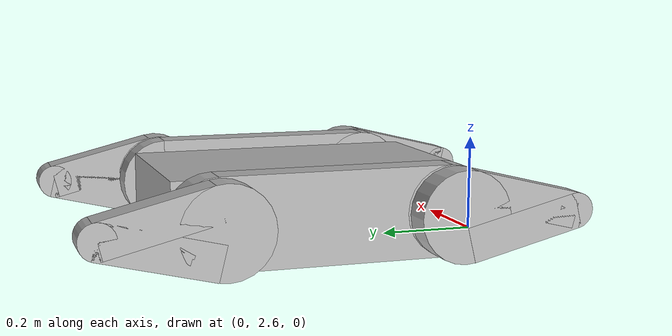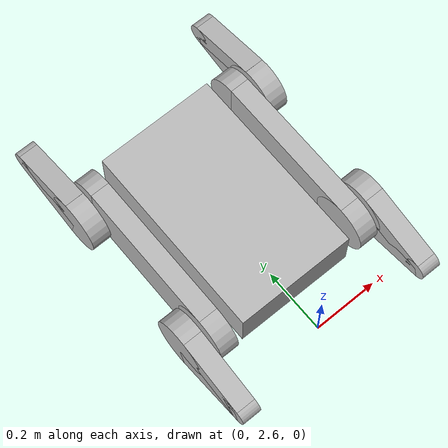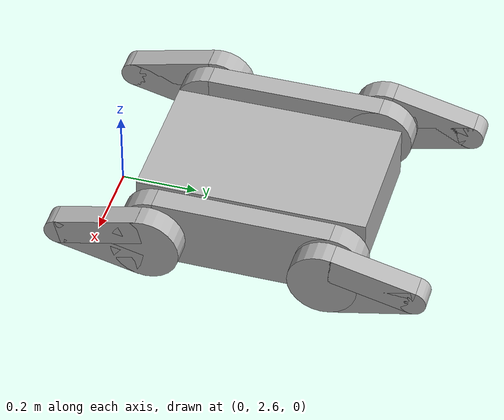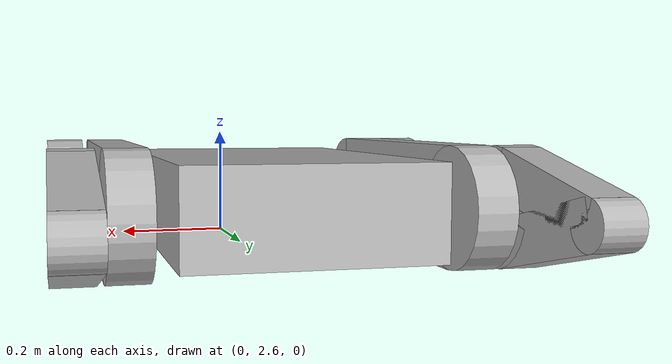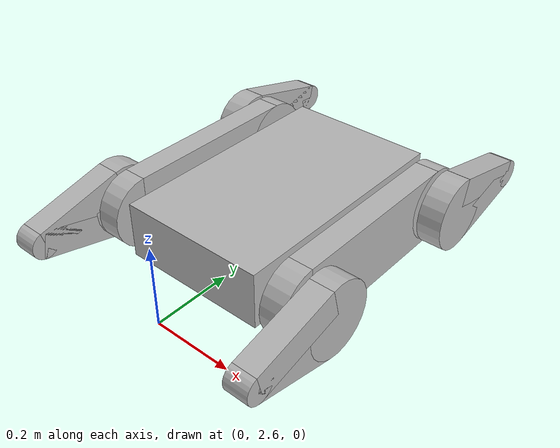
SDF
<?xml version='1.0'?>
<sdf version="1.5">
        <model name="jaguar">

            <pose frame=''>0 3 0.1 0 0 -1.5708</pose>

            <link name='base_link'>
                <pose frame=''>0 0 0 0 -0 0</pose>
                <inertial>
                    <pose frame=''>0 0 0 1.5708 -0 0</pose>
                    <mass>13.14</mass>
                    <inertia>
                        <ixx>0.17136</ixx>
                        <ixy>0</ixy>
                        <ixz>0</ixz>
                        <iyy>0.544105</iyy>
                        <iyz>0</iyz>
                        <izz>0.415662</izz>
                    </inertia>
                </inertial>
                <collision name='base_link_collision'>
                    <pose frame=''>0 0 0 0 -0 0</pose>
                    <geometry>
                        <box>
                            <size>0.6 0.37 0.140</size>
                        </box>
                    </geometry>
                </collision>
                <visual name='base_link_visual'>
                    <pose frame=''>0 0 0 0 -0 0</pose>
                    <geometry>
                        <box>
                            <size>0.6 0.37 0.140</size>
                        </box>
                    </geometry>
                </visual>
                <self_collide>0</self_collide>
                <gravity>1</gravity>
                <kinematic>0</kinematic>
            </link>

            <link name='left_track'>
                <pose frame=''>0 0.245 0 0 0 0</pose>
                <inertial>
                    <pose frame=''>0 0 0 0 0 0</pose>
                    <mass>6.06</mass>
                    <inertia>
                        <ixx>0.001818</ixx>
                        <ixy>0</ixy>
                        <ixz>0</ixz>
                        <iyy>0.032554</iyy>
                        <iyz>0</iyz>
                        <izz>0.031391</izz>
                    </inertia>
                </inertial>
                <collision name='left_track_collision'>
                    <pose frame=''>0 0 0 1.5708 0 1.5708</pose>
                    <geometry>
                        <box>
                            <size>0.06 0.180 0.46</size>
                        </box>
                    </geometry>
                    <surface>
                        <friction>
                            <ode>
                                <mu>0.7</mu>
                                <mu2>150</mu2>
                                <fdir1>0 1 0</fdir1>
                            </ode>
                        </friction>
                    </surface>
                </collision>
                <collision name='left_track_collision_1'>
                    <pose frame=''>0.23 0 0 1.5708 0 0</pose>
                    <geometry>
                        <cylinder>
                            <length>0.06</length>
                            <radius>0.09</radius>
                        </cylinder>
                    </geometry>
                    <surface>
                        <friction>
                            <ode>
                                <mu>0.7</mu>
                                <mu2>150</mu2>
                                <fdir1>0 1 0</fdir1>
                            </ode>
                        </friction>
                    </surface>
                </collision>
                <collision name='left_track_collision_2'>
                    <pose frame=''>-0.23 0 0 1.5708 0 0</pose>
                    <geometry>
                        <cylinder>
                            <length>0.06</length>
                            <radius>0.09</radius>
                        </cylinder>
                    </geometry>
                    <surface>
                        <friction>
                            <ode>
                                <mu>0.7</mu>
                                <mu2>150</mu2>
                                <fdir1>0 1 0</fdir1>
                            </ode>
                        </friction>
                    </surface>
                </collision>
                <visual name='left_track_visual'>
                    <pose frame=''>0 0 0 1.5708 0 1.5708</pose>
                    <geometry>
                        <box>
                            <size>0.06 0.180 0.46</size>
                        </box>
                    </geometry>
                </visual>
                <visual name='left_track_visual_1'>
                    <pose frame=''>0.23 0 0 1.5708 0 0</pose>
                    <geometry>
                        <cylinder>
                            <length>0.06</length>
                            <radius>0.09</radius>
                        </cylinder>
                    </geometry>
                </visual>
                <visual name='left_track_visual_2'>
                    <pose frame=''>-0.23 0 0 1.5708 0 0</pose>
                    <geometry>
                        <cylinder>
                            <length>0.06</length>
                            <radius>0.09</radius>
                        </cylinder>
                    </geometry>
                </visual>
                <gravity>1</gravity>
                <kinematic>0</kinematic>
            </link>
            <joint name='left_track_j' type='fixed'>
                <child>left_track</child>
                <parent>base_link</parent>
            </joint>

            <link name='right_track'>
                <pose frame=''>0 -0.245 0 0 0 0</pose>
                <inertial>
                    <pose frame=''>0 0 0 0 -0 0</pose>
                    <mass>6.06</mass>
                    <inertia>
                        <ixx>0.001818</ixx>
                        <ixy>0</ixy>
                        <ixz>0</ixz>
                        <iyy>0.032554</iyy>
                        <iyz>0</iyz>
                        <izz>0.031391</izz>
                    </inertia>
                </inertial>
                <collision name='right_track_collision'>
                    <pose frame=''>0 0 0 1.5708 0 1.5708</pose>
                    <geometry>
                        <box>
                            <size>0.06 0.180 0.46</size>
                        </box>
                    </geometry>
                    <surface>
                        <friction>
                            <ode>
                                <mu>0.7</mu>
                                <mu2>150</mu2>
                                <fdir1>0 1 0</fdir1>
                            </ode>
                        </friction>
                    </surface>
                </collision>
                <collision name='right_track_collision_1'>
                    <pose frame=''>0.23 0 0 1.5708 0 0</pose>
                    <geometry>
                        <cylinder>
                            <length>0.06</length>
                            <radius>0.09</radius>
                        </cylinder>
                    </geometry>
                    <surface>
                        <friction>
                            <ode>
                                <mu>0.7</mu>
                                <mu2>150</mu2>
                                <fdir1>0 1 0</fdir1>
                            </ode>
                        </friction>
                    </surface>
                </collision>
                <collision name='right_track_collision_2'>
                    <pose frame=''>-0.23 0 0 1.5708 0 0</pose>
                    <geometry>
                        <cylinder>
                            <length>0.06</length>
                            <radius>0.09</radius>
                        </cylinder>
                    </geometry>
                    <surface>
                        <friction>
                            <ode>
                                <mu>0.7</mu>
                                <mu2>150</mu2>
                                <fdir1>0 1 0</fdir1>
                            </ode>
                        </friction>
                    </surface>
                </collision>
                <visual name='right_track_visual'>
                    <pose frame=''>0 0 0 1.5708 0 1.5708</pose>
                    <geometry>
                        <box>
                            <size>0.06 0.180 0.46</size>
                        </box>
                    </geometry>
                </visual>
                <visual name='right_track_visual_1'>
                    <pose frame=''>0.23 0 0 1.5708 0 0</pose>
                    <geometry>
                        <cylinder>
                            <length>0.06</length>
                            <radius>0.09</radius>
                        </cylinder>
                    </geometry>
                </visual>
                <visual name='right_track_visual_2'>
                    <pose frame=''>-0.23 0 0 1.5708 0 0</pose>
                    <geometry>
                        <cylinder>
                            <length>0.06</length>
                            <radius>0.09</radius>
                        </cylinder>
                    </geometry>
                </visual>
                <gravity>1</gravity>
                <kinematic>0</kinematic>
            </link>
            <joint name='right_track_j' type='fixed'>
                <child>right_track</child>
                <parent>base_link</parent>
            </joint>
            <!--__________________right_rear_arm__________________-->

		    <link name="right_rear_arm">
		      <pose>-0.345 -0.315 0.00 0 0 1.5708</pose>
		      <inertial>
		        <pose>-0.015 0 0 1.57 0 1.57</pose>
		        <mass>1.0</mass>
		        <inertia>
		          <ixx>6.8125e-4</ixx>
		          <ixy>0</ixy>
		          <ixz>0</ixz>
		          <iyy>3.96253e-3</iyy>
		          <iyz>0</iyz>
		          <izz>4.53125e-3</izz>
		        </inertia>
		      </inertial>
		      <visual name="visual">
		        <geometry>
		          <box>
		            <size>.002 .23 .05</size>
		          </box>
		        </geometry>
		        <material>
		          <ambient>0.7 0.7 0.7 1</ambient>
		          <diffuse>0.3 0.3 0.3 1</diffuse>
		          <specular>0.1 0.1 0.1 1</specular>
		          <emissive>0 0 0 0</emissive>
		        </material>
		      </visual>

    		      <collision name="collision_right_rear_arm_wheel_1">
                    <pose>-0 -0.115 0 0 -1.5708 0</pose>
    		        <geometry>
    		          <cylinder>
    		            <radius>.09</radius>
    		            <length>.06</length>
    		          </cylinder>
    		        </geometry>
    		        <surface>
    		          <friction>
    		            <ode>
    		              <mu>0.7</mu>
                          <mu2>150</mu2>
                          <fdir1>0 1 0</fdir1>
    		            </ode>
    		          </friction>
    		        </surface>
    		      </collision>

    		      <visual name="visual_right_rear_arm_wheel_1">
                    <pose>-0 -0.115 0 0 -1.5708 0</pose>
    		        <geometry>
    		          <cylinder>
    		            <radius>.09</radius>
    		            <length>.06</length>
    		          </cylinder>
    		        </geometry>
    		      </visual>
    		      <self_collide>0</self_collide>

    		     <collision name="collision_right_rear_arm_wheel_2">
                    <pose>-0 0.115 0 0 -1.5708 0</pose>
    		        <geometry>
    		          <cylinder>
    		            <radius>.035</radius>
    		            <length>.06</length>
    		          </cylinder>
    		        </geometry>
    		        <surface>
    		          <friction>
    		            <ode>
    		              <mu>0.7</mu>
                          <mu2>150</mu2>
                          <fdir1>0 1 0</fdir1>
    		            </ode>
    		          </friction>
    		        </surface>
    		      </collision>

    		      <visual name="visual_right_rear_arm_wheel_2">
                    <pose>-0 0.115 0 0 -1.5708 0</pose>
    		        <geometry>
    		          <cylinder>
    		            <radius>.035</radius>
    		            <length>.06</length>
    		          </cylinder>
    		        </geometry>
    		      </visual>
    		      <self_collide>0</self_collide>

                     <collision name='right_rear_track_collision'>
                        <pose>-0 0.00657 -0.0267021 -1.3293 0 0</pose>
                        <geometry>
                            <box>
                                <size>0.06 0.07 0.2233</size>
                            </box>
                        </geometry>
                        <surface>
                            <friction>
                                <ode>
                                    <mu>0.7</mu>
                                    <mu2>150</mu2>
                                    <fdir1>0 1 0</fdir1>
                                </ode>
                            </friction>
                        </surface>
                    </collision>

                    <visual name='right_rear_track_visual'>
                        <pose>-0 0.00657 0.0267021 1.3293 0 0</pose>
                        <geometry>
                            <box>
                                <size>0.06 0.07 0.2233</size>
                            </box>
                        </geometry>
                    </visual>

                    <collision name='right_rear_track_collision_2'>
                        <pose>-0 0.00657 0.0267021 1.3293 0 0</pose>
                        <geometry>
                            <box>
                                <size>0.06 0.07 0.23</size>
                            </box>
                        </geometry>
                        <surface>
                            <friction>
                                <ode>
                                    <mu>0.7</mu>
                                    <mu2>150</mu2>
                                    <fdir1>0 1 0</fdir1>
                                </ode>
                            </friction>
                        </surface>
                    </collision>

                    <visual name='right_rear_track_visual_2'>
                        <pose>-0 0.00657 -0.0267021 -1.3293 0 0</pose>
                        <geometry>
                            <box>
                                <size>0.06 0.07 0.23</size>
                            </box>
                        </geometry>
                    </visual>
                    <gravity>1</gravity>
                    <kinematic>0</kinematic>-->
            </link>
            <joint name='right_rear_track_j' type='fixed'>
                <pose>0 -0.115 -0.001 0 0 0</pose>
                <child>right_rear_arm</child>
                <parent>base_link</parent>
                <axis>
                    <xyz>1 0 0</xyz>
                    <dynamics>
                        <damping>.5</damping>
                    </dynamics>
                    <limit>
                        <velocity>1</velocity>
                    </limit>
                </axis>
            </joint>

		<!--__________________/right_rear_arm__________________-->

		<!--__________________left_rear_arm__________________-->
		   <link name="left_rear_arm">
              <pose>-0.345 0.315 0.00 0 0 1.5708</pose>
              <inertial>
                <pose>-0.015 0 0 1.57 0 1.57</pose>
                <mass>1.0</mass>
                <inertia>
                  <ixx>6.8125e-4</ixx>
                  <ixy>0</ixy>
                  <ixz>0</ixz>
                  <iyy>3.96253e-3</iyy>
                  <iyz>0</iyz>
                  <izz>4.53125e-3</izz>
                </inertia>
              </inertial>
              <visual name="visual">
                <geometry>
                  <box>
                    <size>.002 .23 .05</size>
                  </box>
                </geometry>
                <material>
                  <ambient>0.7 0.7 0.7 1</ambient>
                  <diffuse>0.3 0.3 0.3 1</diffuse>
                  <specular>0.1 0.1 0.1 1</specular>
                  <emissive>0 0 0 0</emissive>
                </material>
              </visual>

                  <collision name="collision_left_rear_arm_wheel_1">
                    <pose>-0 -0.115 0 0 -1.5708 0</pose>
                    <geometry>
                      <cylinder>
                        <radius>.09</radius>
                        <length>.06</length>
                      </cylinder>
                    </geometry>
                    <surface>
                      <friction>
                        <ode>
                          <mu>0.7</mu>
                          <mu2>150</mu2>
                          <fdir1>0 1 0</fdir1>
                        </ode>
                      </friction>
                    </surface>
                  </collision>

                  <visual name="visual_left_rear_arm_wheel_1">
                    <pose>-0 -0.115 0 0 -1.5708 0</pose>
                    <geometry>
                      <cylinder>
                        <radius>.09</radius>
                        <length>.06</length>
                      </cylinder>
                    </geometry>
                  </visual>
                  <self_collide>0</self_collide>

                 <collision name="collision_left_rear_arm_wheel_2">
                    <pose>-0 0.115 0 0 -1.5708 0</pose>
                    <geometry>
                      <cylinder>
                        <radius>.035</radius>
                        <length>.06</length>
                      </cylinder>
                    </geometry>
                    <surface>
                      <friction>
                        <ode>
                          <mu>0.7</mu>
                          <mu2>150</mu2>
                          <fdir1>0 1 0</fdir1>
                        </ode>
                      </friction>
                    </surface>
                  </collision>

                  <visual name="visual_left_rear_arm_wheel_2">
                    <pose>-0 0.115 0 0 -1.5708 0</pose>
                    <geometry>
                      <cylinder>
                        <radius>.035</radius>
                        <length>.06</length>
                      </cylinder>
                    </geometry>
                  </visual>
                  <self_collide>0</self_collide>

                     <collision name='left_rear_track_collision'>
                        <pose>-0 0.00657 0.0267021 1.3293 0 0</pose>
                        <geometry>
                            <box>
                                <size>0.06 0.07 0.2233</size>
                            </box>
                        </geometry>
                        <surface>
                            <friction>
                                <ode>
                                    <mu>0.7</mu>
                                    <mu2>150</mu2>
                                    <fdir1>0 1 0</fdir1>
                                </ode>
                            </friction>
                        </surface>
                    </collision>

                    <visual name='left_rear_track_visual'>
                        <pose>-0 0.00657 0.0267021 1.3293 0 0</pose>
                        <geometry>
                            <box>
                                <size>0.06 0.07 0.2233</size>
                            </box>
                        </geometry>
                    </visual>

                    <collision name='left_rear_track_collision_2'>
                        <pose>-0 0.00657 -0.0267021 -1.3293 0 0</pose>
                        <geometry>
                            <box>
                                <size>0.06 0.07 0.23</size>
                            </box>
                        </geometry>
                        <surface>
                            <friction>
                                <ode>
                                    <mu>0.7</mu>
                                    <mu2>150</mu2>
                                    <fdir1>0 1 0</fdir1>
                                </ode>
                            </friction>
                        </surface>
                    </collision>

                    <visual name='left_rear_track_visual_2'>
                        <pose>-0 0.00657 -0.0267021 -1.3293 0 0</pose>
                        <geometry>
                            <box>
                                <size>0.06 0.07 0.23</size>
                            </box>
                        </geometry>
                    </visual>
                    <gravity>1</gravity>
                    <kinematic>0</kinematic>-->
            </link>
            <joint name='left_rear_track_j' type='fixed'>
                <pose>0 -0.115 0.001 0 0 0</pose>
                <child>left_rear_arm</child>
                <parent>base_link</parent>
                <axis>
                    <xyz>1 0 0</xyz>
                    <dynamics>
                        <damping>.5</damping>
                    </dynamics>
                    <limit>
                        <velocity>1</velocity>
                    </limit>
                </axis>
            </joint>

		<!--__________________/left_rear_arm__________________-->

		<!--__________________right_front_arm__________________-->
	    	<link name="right_front_arm">
              <pose>0.345 -0.315 0.00 0 0 1.5708</pose>
              <inertial>
                <pose>-0.015 0 0 1.57 0 1.57</pose>
                <mass>1.0</mass>
                <inertia>
                  <ixx>6.8125e-4</ixx>
                  <ixy>0</ixy>
                  <ixz>0</ixz>
                  <iyy>3.96253e-3</iyy>
                  <iyz>0</iyz>
                  <izz>4.53125e-3</izz>
                </inertia>
              </inertial>
              <visual name="visual">
                <geometry>
                  <box>
                    <size>.002 .23 .05</size>
                  </box>
                </geometry>
                <material>
                  <ambient>0.7 0.7 0.7 1</ambient>
                  <diffuse>0.3 0.3 0.3 1</diffuse>
                  <specular>0.1 0.1 0.1 1</specular>
                  <emissive>0 0 0 0</emissive>
                </material>
              </visual>

                  <collision name="collision_right_front_arm_wheel_1">
                    <pose>-0 0.115 0 0 -1.5708 0</pose>
                    <geometry>
                      <cylinder>
                        <radius>.09</radius>
                        <length>.06</length>
                      </cylinder>
                    </geometry>
                    <surface>
                      <friction>
                        <ode>
                          <mu>0.7</mu>
                          <mu2>150</mu2>
                          <fdir1>0 1 0</fdir1>
                        </ode>
                      </friction>
                    </surface>
                  </collision>

                  <visual name="visual_right_front_arm_wheel_1">
                    <pose>-0 0.115 0 0 -1.5708 0</pose>
                    <geometry>
                      <cylinder>
                        <radius>.09</radius>
                        <length>.06</length>
                      </cylinder>
                    </geometry>
                  </visual>
                  <self_collide>0</self_collide>

                 <collision name="collision_right_front_arm_wheel_2">
                    <pose>-0 -0.115 0 0 -1.5708 0</pose>
                    <geometry>
                      <cylinder>
                        <radius>.035</radius>
                        <length>.06</length>
                      </cylinder>
                    </geometry>
                    <surface>
                      <friction>
                        <ode>
                          <mu>0.7</mu>
                          <mu2>150</mu2>
                          <fdir1>0 1 0</fdir1>
                        </ode>
                      </friction>
                    </surface>
                  </collision>

                  <visual name="visual_right_front_arm_wheel_2">
                    <pose>-0 -0.115 0 0 -1.5708 0</pose>
                    <geometry>
                      <cylinder>
                        <radius>.035</radius>
                        <length>.06</length>
                      </cylinder>
                    </geometry>
                  </visual>
                  <self_collide>0</self_collide>

                     <collision name='right_front_track_collision'>
                        <pose>-0 -0.00657 0.0267021 -1.3293 0 0</pose>
                        <geometry>
                            <box>
                                <size>0.06 0.07 0.2233</size>
                            </box>
                        </geometry>
                        <surface>
                            <friction>
                                <ode>
                                    <mu>0.7</mu>
                                    <mu2>150</mu2>
                                    <fdir1>0 1 0</fdir1>
                                </ode>
                            </friction>
                        </surface>
                    </collision>

                    <visual name='right_front_track_visual'>
                        <pose>-0 -0.00657 0.0267021 -1.3293 0 0</pose>
                        <geometry>
                            <box>
                                <size>0.06 0.07 0.2233</size>
                            </box>
                        </geometry>
                    </visual>

                    <collision name='right_front_track_collision_2'>
                        <pose>-0 -0.00657 -0.0267021 1.3293 0 0</pose>
                        <geometry>
                            <box>
                                <size>0.06 0.07 0.23</size>
                            </box>
                        </geometry>
                        <surface>
                            <friction>
                                <ode>
                                    <mu>0.7</mu>
                                    <mu2>150</mu2>
                                    <fdir1>0 1 0</fdir1>
                                </ode>
                            </friction>
                        </surface>
                    </collision>

                    <visual name='right_front_track_visual_2'>
                        <pose>-0 -0.00657 -0.0267021 1.3293 0 0</pose>
                        <geometry>
                            <box>
                                <size>0.06 0.07 0.23</size>
                            </box>
                        </geometry>
                    </visual>
                    <gravity>1</gravity>
                    <kinematic>0</kinematic>-->
            </link>
            <joint name='right_front_track_j' type='fixed'>
                <pose>0 0.115 -0.001 0 0 0</pose>
                <child>right_front_arm</child>
                <parent>base_link</parent>
                <axis>
                    <xyz>1 0 0</xyz>
                    <dynamics>
                        <damping>.5</damping>
                    </dynamics>
                    <limit>
                        <velocity>1</velocity>
                    </limit>
                </axis>
            </joint>
		<!--__________________/right_front_arm__________________-->
		<!--__________________left_front_arm__________________-->
		    <link name="left_front_arm">
              <pose>0.345 0.315 0.00 0 0 1.5708</pose>
              <inertial>
                <pose>-0.015 0 0 1.57 0 1.57</pose>
                <mass>1.0</mass>
                <inertia>
                  <ixx>6.8125e-4</ixx>
                  <ixy>0</ixy>
                  <ixz>0</ixz>
                  <iyy>3.96253e-3</iyy>
                  <iyz>0</iyz>
                  <izz>4.53125e-3</izz>
                </inertia>
              </inertial>
              <visual name="visual">
                <geometry>
                  <box>
                    <size>.002 .23 .05</size>
                  </box>
                </geometry>
                <material>
                  <ambient>0.7 0.7 0.7 1</ambient>
                  <diffuse>0.3 0.3 0.3 1</diffuse>
                  <specular>0.1 0.1 0.1 1</specular>
                  <emissive>0 0 0 0</emissive>
                </material>
              </visual>

                  <collision name="collision_left_front_arm_wheel_1">
                    <pose>-0 0.115 0 0 -1.5708 0</pose>
                    <geometry>
                      <cylinder>
                        <radius>.09</radius>
                        <length>.06</length>
                      </cylinder>
                    </geometry>
                    <surface>
                      <friction>
                        <ode>
                          <mu>0.7</mu>
                          <mu2>150</mu2>
                          <fdir1>0 1 0</fdir1>
                        </ode>
                      </friction>
                    </surface>
                  </collision>

                  <visual name="visual_left_front_arm_wheel_1">
                    <pose>-0 0.115 0 0 -1.5708 0</pose>
                    <geometry>
                      <cylinder>
                        <radius>.09</radius>
                        <length>.06</length>
                      </cylinder>
                    </geometry>
                  </visual>
                  <self_collide>0</self_collide>

                 <collision name="collision_left_front_arm_wheel_2">
                    <pose>-0 -0.115 0 0 -1.5708 0</pose>
                    <geometry>
                      <cylinder>
                        <radius>.035</radius>
                        <length>.06</length>
                      </cylinder>
                    </geometry>
                    <surface>
                      <friction>
                        <ode>
                          <mu>0.7</mu>
                          <mu2>150</mu2>
                          <fdir1>0 1 0</fdir1>
                        </ode>
                      </friction>
                    </surface>
                  </collision>

                  <visual name="visual_left_front_arm_wheel_2">
                    <pose>-0 -0.115 0 0 -1.5708 0</pose>
                    <geometry>
                      <cylinder>
                        <radius>.035</radius>
                        <length>.06</length>
                      </cylinder>
                    </geometry>
                  </visual>
                  <self_collide>0</self_collide>

                     <collision name='left_front_track_collision'>
                        <pose>-0 -0.00657 0.0267021 -1.3293 0 0</pose>
                        <geometry>
                            <box>
                                <size>0.06 0.07 0.2233</size>
                            </box>
                        </geometry>
                        <surface>
                            <friction>
                                <ode>
                                    <mu>0.7</mu>
                                    <mu2>150</mu2>
                                    <fdir1>0 1 0</fdir1>
                                </ode>
                            </friction>
                        </surface>
                    </collision>

                    <visual name='left_front_track_visual'>
                        <pose>-0 -0.00657 0.0267021 -1.3293 0 0</pose>
                        <geometry>
                            <box>
                                <size>0.06 0.07 0.2233</size>
                            </box>
                        </geometry>
                    </visual>

                    <collision name='left_front_track_collision_2'>
                        <pose>-0 -0.00657 -0.0267021 1.3293 0 0</pose>
                        <geometry>
                            <box>
                                <size>0.06 0.07 0.23</size>
                            </box>
                        </geometry>
                        <surface>
                            <friction>
                                <ode>
                                    <mu>0.7</mu>
                                    <mu2>150</mu2>
                                    <fdir1>0 1 0</fdir1>
                                </ode>
                            </friction>
                        </surface>
                    </collision>

                    <visual name='left_front_track_visual_2'>
                        <pose>-0 -0.00657 -0.0267021 1.3293 0 0</pose>
                        <geometry>
                            <box>
                                <size>0.06 0.07 0.23</size>
                            </box>
                        </geometry>
                    </visual>
                    <gravity>1</gravity>
                    <kinematic>0</kinematic>-->
            </link>
            <joint name='left_front_track_j' type='fixed'>
                <pose>0 0.115 0.001 0 0 0</pose>
                <child>left_front_arm</child>
                <parent>base_link</parent>
                <axis>
                    <xyz>1 0 0</xyz>
                    <dynamics>
                        <damping>.5</damping>
                    </dynamics>
                    <limit>
                        <velocity>1</velocity>
                    </limit>
                </axis>
            </joint>
  	</model>
</sdf>
